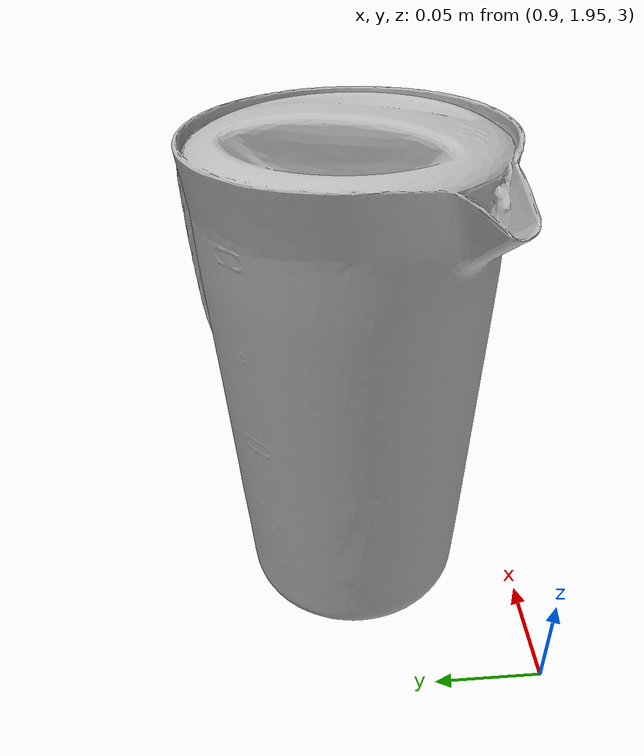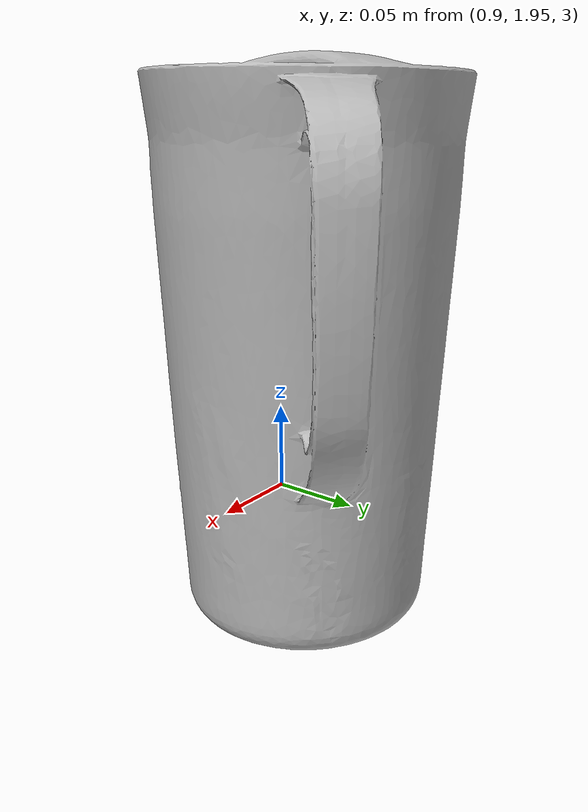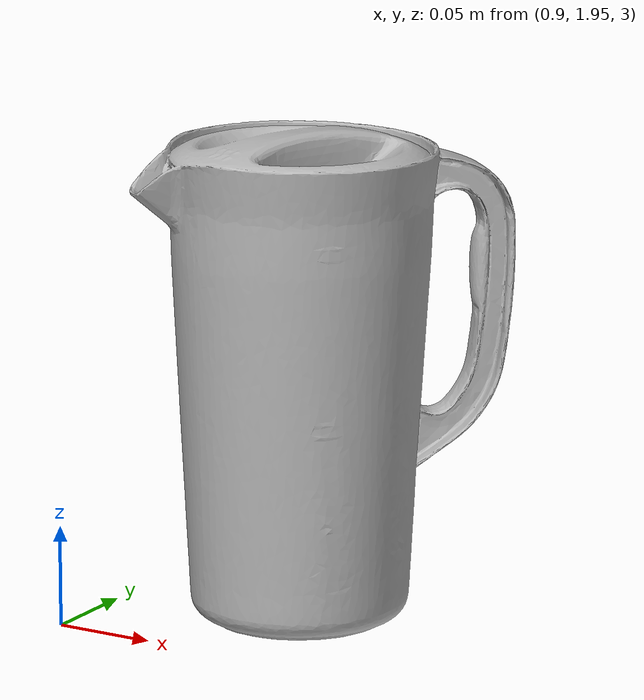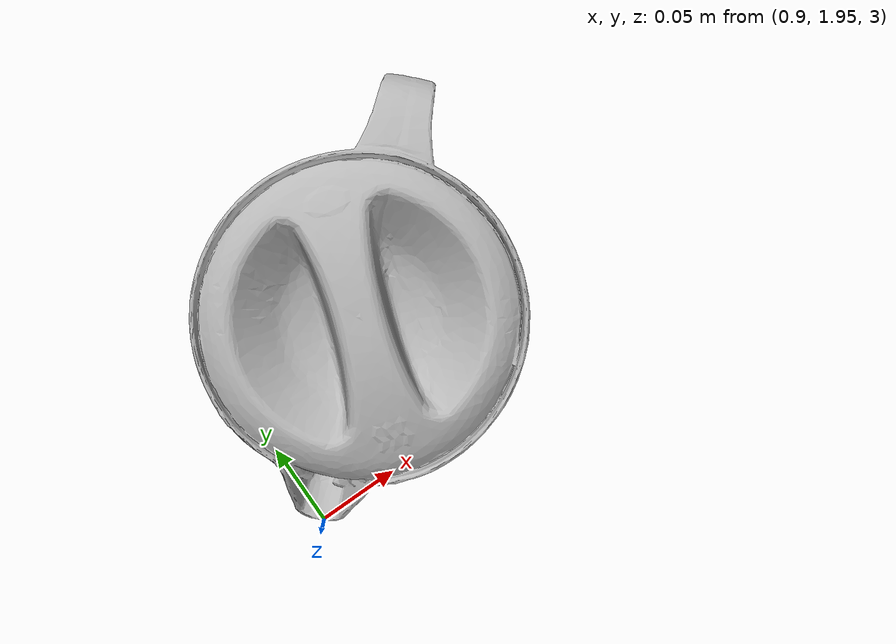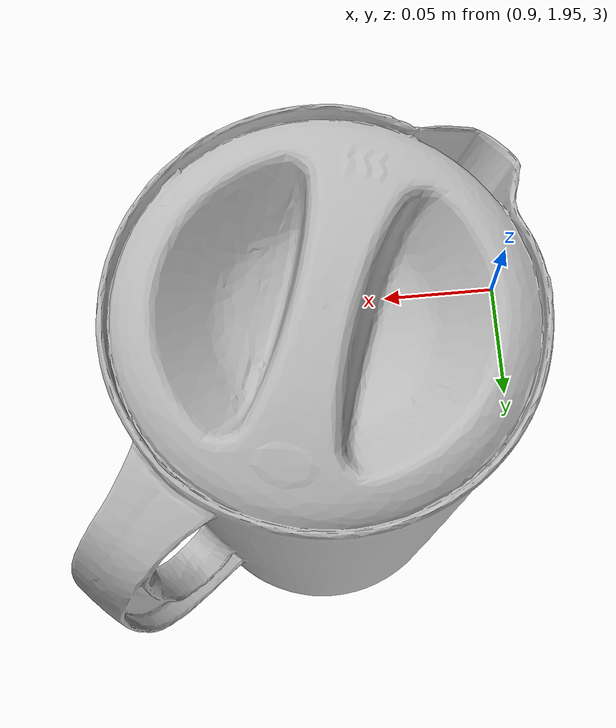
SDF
<?xml version="1.0" ?>
<sdf version="1.7">
<!--
This SDF file was automatically generated using a template modified
and authored by Adwait Naik. The moment of interia is not supposed to be changed.
-->
    <model name="pitcher_base">
      <pose>1.0 2.0 3.0 0 0 0</pose>
      <link name="link">
        <inertial>
          <inertia>
           <ixx>1.3427327160192555e-05</ixx>
           <ixy>8.839744882107692e-22</ixy>
           <ixz>-1.5752498176756463e-21</ixz>
           <iyy>1.326831085149032e-05</iyy>
           <iyz>-1.3566857513327304e-21</iyz>
           <izz>4.702625186734818e-06</izz>
          </inertia>
          <mass>0.0025490222330232276</mass>
        </inertial>
        <collision name="collision">
          <geometry>
            <cylinder><radius>0.04</radius><length>0.15</length></cylinder>
          </geometry>
        </collision>

        <visual name="visual">
          <geometry>
            <mesh>
            <uri>textured.stl</uri>
            </mesh>
          </geometry>
        </visual>
      </link>
    </model>
</sdf>
